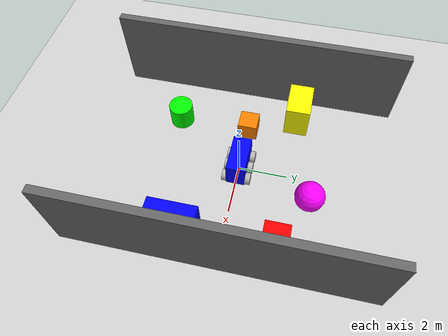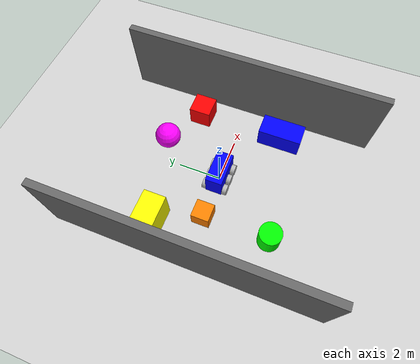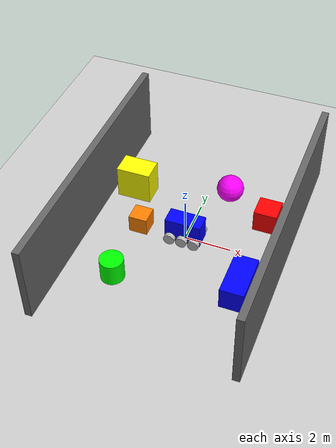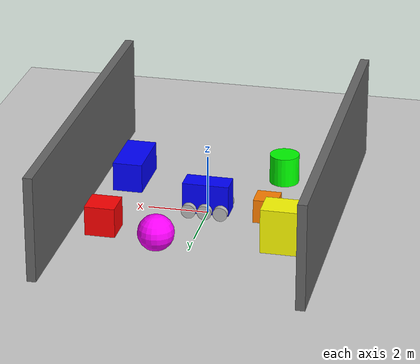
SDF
<sdf version="1.10">
 <world name="room">
  <physics name="1ms" type="ignored">
   <max_step_size>0.001</max_step_size>
   <real_time_factor>1.0</real_time_factor>
  </physics>
  <plugin filename="gz-sim-physics-system" name="gz::sim::systems::Physics"/>
  <plugin filename="gz-sim-user-commands-system" name="gz::sim::systems::UserCommands"/>
  <plugin filename="gz-sim-scene-broadcaster-system" name="gz::sim::systems::SceneBroadcaster"/>
  <plugin filename="gz-sim-imu-system" name="gz::sim::systems::Imu"/>
  <plugin filename="gz-sim-sensors-system" name="gz::sim::systems::Sensors">
   <render_engine>ogre2</render_engine>
  </plugin>
  <light type="directional" name="sun">
   <pose>0 0 10 0 0 0</pose>
   <diffuse>0.8 0.8 0.8 1</diffuse>
   <specular>0.2 0.2 0.2 1</specular>
   <attenuation>
    <range>1000</range>
    <constant>0.9</constant>
    <linear>0.01</linear>
    <quadratic>0.001</quadratic>
   </attenuation>
   <direction>-0.5 0.1 -0.9</direction>
  </light>
  <model name="ground_plane">
   <static>true</static>
   <link name="link">
    <collision name="collision"><geometry><plane><normal>0 0 1</normal></plane></geometry></collision>
    <visual name="visual">
     <geometry><plane><normal>0 0 1</normal><size>100 100</size></plane></geometry>
     <material>
      <ambient>0.8 0.8 0.8 1</ambient>
      <diffuse>0.8 0.8 0.8 1</diffuse>
      <specular>0.8 0.8 0.8 1</specular>
     </material>
    </visual>
   </link>
  </model>
  <model name="FLIP" canonical_link="chassis">
   <link name="chassis">
    <pose relative_to="__model__">0 0 0.625 0 0 0</pose>
    <inertial>
     <mass>450.0</mass>
     <inertia><ixx>62.438</ixx><ixy>0</ixy><ixz>0</ixz><iyy>131.438</iyy><iyz>0</iyz><izz>111.188</izz></inertia>
    </inertial>
    <visual name="visual">
     <geometry><box><size>1.55 0.75 1.05</size></box></geometry>
     <material>
      <ambient>0.0 0.0 1.0 1</ambient>
      <diffuse>0.0 0.0 1.0 1</diffuse>
      <specular>0.0 0.0 1.0 1</specular>
     </material>
    </visual>
    <collision name="collision"><geometry><box><size>1.55 0.75 1.05</size></box></geometry></collision>
    <sensor name="imu_sensor" type="imu">
     <always_on>1</always_on>
     <update_rate>20</update_rate>
     <visualize>true</visualize>
     <topic>imu</topic>
    </sensor>
    <sensor name="gpu_lidar" type="gpu_lidar">
     <pose>0.6 0 0.3 0 0 0</pose>
     <always_on>1</always_on>
     <update_rate>10</update_rate>
     <lidar>
      <scan>
       <horizontal>
        <samples>320</samples>
        <resolution>1</resolution>
        <min_angle>-3.14</min_angle>
        <max_angle>3.14</max_angle>
       </horizontal>
       <vertical>
        <samples>1</samples>
        <resolution>1</resolution>
        <min_angle>0</min_angle>
        <max_angle>0</max_angle>
       </vertical>
      </scan>
      <range><min>0.08</min><max>10.0</max><resolution>0.01</resolution></range>
     </lidar>
     <visualize>true</visualize>
     <topic>lidar</topic>
    </sensor>
   </link>
   <link name="left_back_wheel">
    <pose relative_to="chassis">-0.533 0.475 -0.383 -1.5707 0 0</pose>
    <inertial>
     <mass>5</mass>
     <inertia><ixx>0.694</ixx><ixy>0</ixy><ixz>0</ixz><iyy>1.460</iyy><iyz>0</iyz><izz>1.235</izz></inertia>
    </inertial>
    <visual name="visual">
     <geometry><cylinder><radius>0.242</radius><length>0.2</length></cylinder></geometry>
    </visual>
    <collision name="collision">
     <geometry><cylinder><radius>0.242</radius><length>0.2</length></cylinder></geometry>
    </collision>
   </link>
   <link name="left_middle_wheel">
    <pose relative_to="chassis">0 0.475 -0.383 -1.5707 0 0</pose>
    <inertial>
     <mass>5</mass>
     <inertia><ixx>0.694</ixx><ixy>0</ixy><ixz>0</ixz><iyy>1.460</iyy><iyz>0</iyz><izz>1.235</izz></inertia>
    </inertial>
    <visual name="visual">
     <geometry><cylinder><radius>0.242</radius><length>0.2</length></cylinder></geometry>
    </visual>
    <collision name="collision">
     <geometry><cylinder><radius>0.242</radius><length>0.2</length></cylinder></geometry>
    </collision>
   </link>
   <link name="right_back_wheel">
    <pose relative_to="chassis">-0.533 -0.475 -0.383 -1.5707 0 0</pose>
    <inertial>
     <mass>5</mass>
     <inertia><ixx>0.694</ixx><ixy>0</ixy><ixz>0</ixz><iyy>1.460</iyy><iyz>0</iyz><izz>1.235</izz></inertia>
    </inertial>
    <visual name="visual">
     <geometry><cylinder><radius>0.242</radius><length>0.2</length></cylinder></geometry>
    </visual>
    <collision name="collision">
     <geometry><cylinder><radius>0.242</radius><length>0.2</length></cylinder></geometry>
    </collision>
   </link>
   <link name="right_middle_wheel">
    <pose relative_to="chassis">0 -0.475 -0.383 -1.5707 0 0</pose>
    <inertial>
     <mass>5</mass>
     <inertia><ixx>0.694</ixx><ixy>0</ixy><ixz>0</ixz><iyy>1.460</iyy><iyz>0</iyz><izz>1.235</izz></inertia>
    </inertial>
    <visual name="visual">
     <geometry><cylinder><radius>0.242</radius><length>0.2</length></cylinder></geometry>
    </visual>
    <collision name="collision">
     <geometry><cylinder><radius>0.242</radius><length>0.2</length></cylinder></geometry>
    </collision>
   </link>
   <link name="left_front_steer_link">
    <pose relative_to="chassis">0.533 0.475 -0.383 0 0 0</pose>
    <inertial>
     <mass>1.0</mass>
     <inertia><ixx>0.01</ixx><ixy>0</ixy><ixz>0</ixz><iyy>0.01</iyy><iyz>0</iyz><izz>0.01</izz></inertia>
    </inertial>
   </link>
   <link name="right_front_steer_link">
    <pose relative_to="chassis">0.533 -0.475 -0.383 0 0 0</pose>
    <inertial>
     <mass>1.0</mass>
     <inertia><ixx>0.01</ixx><ixy>0</ixy><ixz>0</ixz><iyy>0.01</iyy><iyz>0</iyz><izz>0.01</izz></inertia>
    </inertial>
   </link>
   <link name="left_front_wheel">
    <pose relative_to="left_front_steer_link">0 0 0 -1.5707 0 0</pose>
    <inertial>
     <mass>5</mass>
     <inertia><ixx>0.694</ixx><ixy>0</ixy><ixz>0</ixz><iyy>1.460</iyy><iyz>0</iyz><izz>1.235</izz></inertia>
    </inertial>
    <visual name="visual">
     <geometry><cylinder><radius>0.242</radius><length>0.2</length></cylinder></geometry>
    </visual>
    <collision name="collision">
     <geometry><cylinder><radius>0.242</radius><length>0.2</length></cylinder></geometry>
    </collision>
   </link>
   <link name="right_front_wheel">
    <pose relative_to="right_front_steer_link">0 0 0 -1.5707 0 0</pose>
    <inertial>
     <mass>5</mass>
     <inertia><ixx>0.694</ixx><ixy>0</ixy><ixz>0</ixz><iyy>1.460</iyy><iyz>0</iyz><izz>1.235</izz></inertia>
    </inertial>
    <visual name="visual">
     <geometry><cylinder><radius>0.242</radius><length>0.2</length></cylinder></geometry>
    </visual>
    <collision name="collision">
     <geometry><cylinder><radius>0.242</radius><length>0.2</length></cylinder></geometry>
    </collision>
   </link>
   <joint name="left_front_wheel_joint" type="revolute">
    <parent>chassis</parent>
    <child>left_front_wheel</child>
    <axis><xyz>0 0 1</xyz></axis>
   </joint>
   <joint name="left_middle_wheel_joint" type="revolute">
    <parent>chassis</parent>
    <child>left_middle_wheel</child>
    <axis><xyz>0 0 1</xyz></axis>
   </joint>
   <joint name="left_back_wheel_joint" type="revolute">
    <parent>chassis</parent>
    <child>left_back_wheel</child>
    <axis><xyz>0 0 1</xyz></axis>
   </joint>
   <joint name="right_front_wheel_joint" type="revolute">
    <parent>chassis</parent>
    <child>right_front_wheel</child>
    <axis><xyz>0 0 1</xyz></axis>
   </joint>
   <joint name="right_middle_wheel_joint" type="revolute">
    <parent>chassis</parent>
    <child>right_middle_wheel</child>
    <axis><xyz>0 0 1</xyz></axis>
   </joint>
   <joint name="right_back_wheel_joint" type="revolute">
    <parent>chassis</parent>
    <child>right_back_wheel</child>
    <axis><xyz>0 0 1</xyz></axis>
   </joint>
   <plugin filename="gz-sim-diff-drive-system" name="gz::sim::systems::DiffDrive">
    <left_joint>left_back_wheel_joint</left_joint>
    <left_joint>left_middle_wheel_joint</left_joint>
    <left_joint>left_front_wheel_joint</left_joint>
    <right_joint>right_back_wheel_joint</right_joint>
    <right_joint>right_middle_wheel_joint</right_joint>
    <right_joint>right_front_wheel_joint</right_joint>
    <wheel_separation>0.95</wheel_separation>
    <wheel_radius>0.242</wheel_radius>
    <topic>/model/FLIP/cmd_vel</topic>
    <odom_topic>/model/FLIP/odometry</odom_topic>
    <tf_topic>/model/FLIP/tf</tf_topic>
    <frame_id>odom</frame_id>
    <child_frame_id>chassis</child_frame_id>
   </plugin>
  </model>
  <include>
   <uri>file:///workspace/models/gazebo/obstacles/walls/verticalWall0_3x12x3_5</uri>
   <name>frontWall</name>
   <pose>4.2 0 1.75 0 0 0</pose>
  </include>
  <include>
   <uri>file:///workspace/models/gazebo/obstacles/walls/verticalWall0_3x12x3_5</uri>
   <name>backWall</name>
   <pose>-4.2 0 1.75 0 0 0</pose>
  </include>
  <include>
   <uri>file:///workspace/models/gazebo/obstacles/shapes/redCube1x1x1</uri>
   <name>redCube</name>
   <pose>3 2 0.5 0 0 0</pose>
  </include>
  <include>
   <uri>file:///workspace/models/gazebo/obstacles/shapes/greenCylinder0_5x1</uri>
   <name>greenCylinder</name>
   <pose>-2 -3 0.5 0 0 0</pose>
  </include>
  <include>
   <uri>file:///workspace/models/gazebo/obstacles/shapes/blueBox1x2x1</uri>
   <name>blueBox</name>
   <pose>3 -2 0.5 0 0 0</pose>
  </include>
  <include>
   <uri>file:///workspace/models/gazebo/obstacles/shapes/yellowBox1_5x1x1_5</uri>
   <name>yellowBox</name>
   <pose>-3 2 0.75 0 0 0</pose>
  </include>
  <include>
   <uri>file:///workspace/models/gazebo/obstacles/shapes/pinkBall0_6</uri>
   <name>pinkBall</name>
   <pose>1 3 0.6 0 0 0</pose>
  </include>
  <include>
   <uri>file:///workspace/models/gazebo/obstacles/shapes/orangeBox0_8x0_8x0_8</uri>
   <name>orangeBox</name>
   <pose>-2 0 0.4 0 0 0</pose>
  </include>
 </world>
</sdf>

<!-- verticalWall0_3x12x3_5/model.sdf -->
<sdf version="1.10">
    <model name="verticalWall0_3x12x3_5">
      <static>true</static>
      <pose>0 3.9 1.75 0 0 1.5708</pose>
      <link name="link">
        <collision name="collision">
          <geometry><box><size>0.3 12.0 3.5</size></box></geometry>
        </collision>
        <visual name="visual">
          <geometry><box><size>0.3 12.0 3.5</size></box></geometry>
          <material>
            <ambient>0.4 0.4 0.4 1</ambient>
            <diffuse>0.4 0.4 0.4 1</diffuse>
            <specular>0.2 0.2 0.2 1</specular>
          </material>
          <plugin
            filename="gz-sim-thermal-system"
            name="gz::sim::systems::Thermal">
            <temperature>292.1</temperature>
            <emissivity>0.9</emissivity>
          </plugin>
        </visual>
      </link>
    </model>
</sdf>

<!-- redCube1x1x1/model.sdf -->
<sdf version="1.10">
    <model name="redCube1x1x1">
      <static>true</static>
      <pose>3 2 0.5 0 0 0</pose>
      <link name="link">
        <collision name="collision">
          <geometry><box><size>1 1 1</size></box></geometry>
        </collision>
        <visual name="visual">
          <geometry><box><size>1 1 1</size></box></geometry>
          <material>
            <ambient>1 0 0 1</ambient>
            <diffuse>1 0 0 1</diffuse>
            <specular>0.5 0.5 0.5 1</specular>
          </material>
          <plugin
            filename="gz-sim-thermal-system"
            name="gz::sim::systems::Thermal">
            <temperature>373.50</temperature>
            <emissivity>0.9</emissivity>
          </plugin>
        </visual>
      </link>
    </model>
</sdf>

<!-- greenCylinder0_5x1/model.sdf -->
<sdf version="1.10">
    <model name="greenCylinder0_5x1">
      <static>true</static>
      <pose>-2 -3 0.5 0 0 0</pose>
      <link name="link">
        <temperature>120.0</temperature>
        <collision name="collision">
          <geometry><cylinder><radius>0.5</radius><length>1.0</length></cylinder></geometry>
        </collision>
        <visual name="visual">
          <geometry><cylinder><radius>0.5</radius><length>1.0</length></cylinder></geometry>
          <material>
            <ambient>0 1 0 1</ambient>
            <diffuse>0 1 0 1</diffuse>
          </material>
        <plugin
          filename="gz-sim-thermal-system"
          name="gz::sim::systems::Thermal">
          <temperature>340</temperature>
          <emissivity>0.9</emissivity>
        </plugin>
        </visual>
      </link>
    </model>
</sdf>

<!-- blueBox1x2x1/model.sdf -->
<sdf version="1.10">
    <model name="blueBox1x2x1">
      <static>true</static>
      <pose>3 -2 0.5 0 0 0</pose>
      <link name="link">
        <temperature>300.0</temperature>
        <collision name="collision">
          <geometry><box><size>1 2 1</size></box></geometry>
        </collision>
        <visual name="visual">
          <geometry><box><size>1 2 1</size></box></geometry>
          <material>
            <ambient>0 0 1 1</ambient>
            <diffuse>0 0 1 1</diffuse>
          </material>
          <plugin
            filename="gz-sim-thermal-system"
            name="gz::sim::systems::Thermal">
            <temperature>343.15</temperature>
          </plugin>
        </visual>
      </link>
    </model>
</sdf>

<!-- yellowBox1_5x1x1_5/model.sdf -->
<sdf version="1.10">
    <model name="yellowBox1_5x1x1_5">
      <static>true</static>
      <pose>-3 2 0.75 0 0 0</pose>
      <link name="link">
        <temperature>200.0</temperature>
        <collision name="collision">
          <geometry><box><size>1.5 1 1.5</size></box></geometry>
        </collision>
        <visual name="visual">
          <geometry><box><size>1.5 1 1.5</size></box></geometry>
          <material>
            <ambient>1 1 0 1</ambient>
            <diffuse>1 1 0 1</diffuse>
          </material>
          <plugin
            filename="gz-sim-thermal-system"
            name="gz::sim::systems::Thermal">
            <temperature>325</temperature>
            <emissivity>0.9</emissivity>
          </plugin>
        </visual>
      </link>
    </model>
</sdf>

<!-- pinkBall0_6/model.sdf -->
<sdf version="1.10">
    <model name="pinkBall0_6">
      <static>true</static>
      <pose>1 3 0.6 0 0 0</pose>
      <link name="link">
        <temperature>600.0</temperature>
        <collision name="collision">
          <geometry><sphere><radius>0.6</radius></sphere></geometry>
        </collision>
        <visual name="visual">
          <geometry><sphere><radius>0.6</radius></sphere></geometry>
          <material>
            <ambient>1 0 1 1</ambient>
            <diffuse>1 0 1 1</diffuse>
          </material>
          <plugin
            filename="gz-sim-thermal-system"
            name="gz::sim::systems::Thermal">
            <temperature>313.55</temperature>
            <emissivity>0.9</emissivity>
          </plugin>
        </visual>
      </link>
    </model>
</sdf>

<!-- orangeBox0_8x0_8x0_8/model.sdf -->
<sdf version="1.10">
<model name="orangeBox0_8x0_8x0_8">
  <static>true</static>
  <pose>-2 0 0.4 0 0 0</pose>
  <link name="link">

    <collision name="collision">
      <geometry>
        <box>
          <size>0.8 0.8 0.8</size>
        </box>
      </geometry>
    </collision>

    <!-- Orange box visual -->
    <visual name="visual">
      <geometry>
        <box>
          <size>0.8 0.8 0.8</size>
        </box>
      </geometry>
      <material>
        <ambient>1 0.5 0 1</ambient>
        <diffuse>1 0.5 0 1</diffuse>
      </material>
      <plugin
        filename="gz-sim-thermal-system"
        name="gz::sim::systems::Thermal">
        <temperature>513.15</temperature>
        <emissivity>0.9</emissivity>
      </plugin>
    </visual>

    <!-- Thermal core visual -->
    <visual name="thermal_core">
      <pose>0 0 0.25 1.5708 0 0</pose>
      <geometry>
        <sphere>
          <radius>0.08</radius>
        </sphere>
      </geometry>
      <material>
        <ambient>1 0.4 0 1</ambient>
        <diffuse>1 0.4 0 1</diffuse>
      </material>
      <plugin
        filename="gz-sim-thermal-system"
        name="gz::sim::systems::Thermal">
        <temperature>583.83</temperature>
        <emissivity>0.9</emissivity>
      </plugin>
    </visual>

    <!-- 3. CLEANED PARTICLE EMITTER: Removed invalid nested tags for Ionic -->
    <particle_emitter name="fire" type="box">
      <pose>0 0 0.25 1.5708 0 0</pose>
      <size>0.15 0.15 0.30</size>
      <rate>50</rate>
      <particle_size>0.05 0.05 0.05</particle_size>
      <lifetime>1</lifetime>
      <!-- Simplified for Ionic stability -->
      <min_velocity>2.5</min_velocity>
      <max_velocity>3.5</max_velocity>
      <color_start>0.6 0 0 0</color_start>
      <color_end>1 0.8 0.2 1</color_end>
      <scale_rate>0.4</scale_rate>
      <emitting>true</emitting>
    </particle_emitter>

  </link>
</model>
</sdf>
